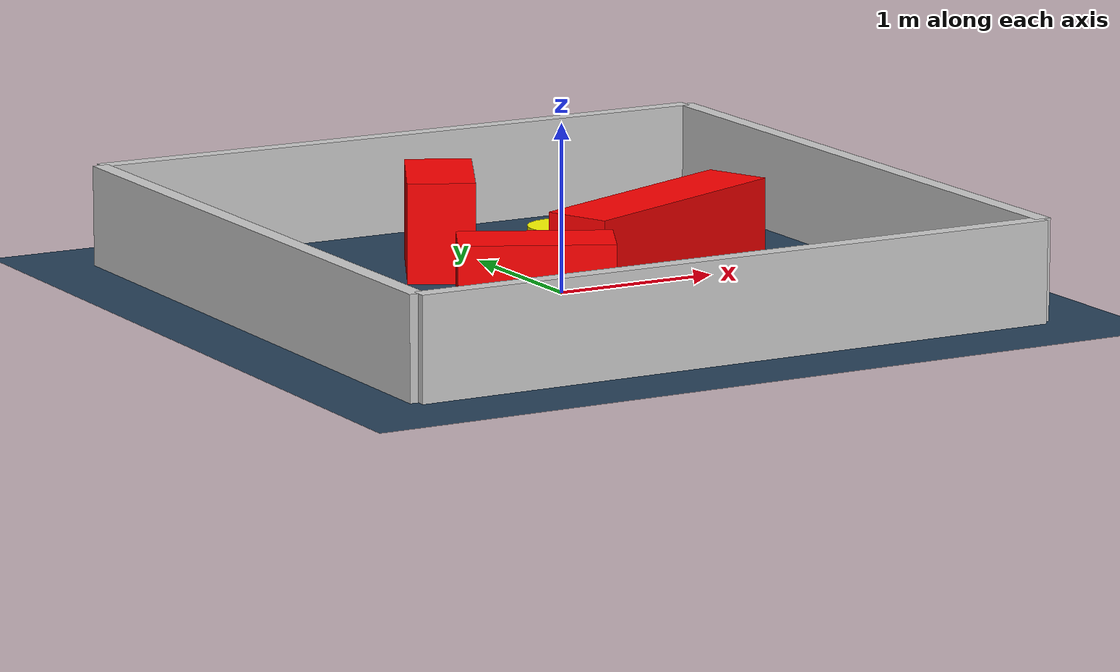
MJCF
<?xml version="1.0" ?>
<mujoco model="generated_environment">
  <option timestep="0.01" integrator="RK4" cone="elliptic"/>
  <default>
    <geom density="1"/>
  </default>
  <asset>
    <texture builtin="gradient" height="3072" rgb1="0.3 0.5 0.7" rgb2="0 0 0" type="skybox" width="512"/>
    <texture builtin="checker" height="300" mark="edge" markrgb="0.8 0.8 0.8" name="groundplane" rgb1="0.2 0.3 0.4" rgb2="0.1 0.2 0.3" type="2d" width="300"/>
    <material name="groundplane" reflectance="0.2" texrepeat="5 5" texture="groundplane" texuniform="true"/>
    <material name="robot" rgba="0.0 1.0 0.0 1"/>
  </asset>
  <worldbody>
    <light dir="0 0 -1" directional="true" pos="0 0 1.5"/>
    <geom condim="4" friction="1.0 0.005 0.001" material="groundplane" name="floor" size="0 0 0.05" type="plane"/>
    <body name="walls">
      <geom name="wall_1" condim="4" pos="-2.0 0.0 0.3" rgba="0.800000011920929 0.800000011920929 0.800000011920929 1.0" size="0.05 2.0 0.3" type="box"/>
      <geom name="wall_2" condim="4" pos="2.0 0.0 0.3" rgba="0.800000011920929 0.800000011920929 0.800000011920929 1.0" size="0.05 2.0 0.3" type="box"/>
      <geom name="wall_3" condim="4" pos="0.0 -2.0 0.3" rgba="0.800000011920929 0.800000011920929 0.800000011920929 1.0" size="2.0 0.05 0.3" type="box"/>
      <geom name="wall_4" condim="4" pos="0.0 2.0 0.3" rgba="0.800000011920929 0.800000011920929 0.800000011920929 1.0" size="2.0 0.05 0.3" type="box"/>
    </body>
    <body name="robot">
      <joint name="joint_x" type="slide" pos="0 0 0" axis="1 0 0"/>
      <joint name="joint_y" type="slide" pos="0 0 0" axis="0 1 0"/>
      <geom name="robot" type="sphere" pos="0.3 0.0 0.2" size="0.05" mass="5." friction="1.0 0.005 0.0001" condim="4" rgba="0.5 0.5 0.5 1.0"/>
      <site name="sensor_ball"/>
    </body>
    <body name="obstacle_movable_1">
      <geom name="obstacle_movable_1" condim="4" pos="0.0 0.0 0.2" euler="0 0 0.0" friction="1.0 0.005 0.001" rgba="1.0 1.0 0.0 1.0" size="0.2 0.2 0.0" type="cylinder" mass="0.1"/>
      <joint type="free"/>
    </body>
    <body name="obstacle_2_static">
      <geom name="obstacle_2_static" condim="4" pos="0.4386812305809169 -0.35764608976708656 0.3" euler="0 0 203.07559009408757" friction="1.0 0.005 0.001" rgba="1 0 0 1" size="0.7745590511967215 0.2 0.3" type="box"/>
    </body>
    <body name="obstacle_3_static">
      <geom name="obstacle_3_static" condim="4" pos="-0.7580986451525898 -1.060450790396147 0.3" euler="0 0 153.68975133346973" friction="1.0 0.005 0.001" rgba="1 0 0 1" size="0.4405235832214729 0.2 0.3" type="box"/>
    </body>
    <body name="obstacle_4_static">
      <geom name="obstacle_4_static" condim="4" pos="-0.3379775009799677 0.8653276570345823 0.3" euler="0 0 243.53217206572762" friction="1.0 0.005 0.001" rgba="1 0 0 1" size="0.3692283277041219 0.2 0.3" type="box"/>
    </body>
  </worldbody>
  <actuator>
    <motor name="actuator_x" joint="joint_x" gear="1" ctrlrange="-1 1"/>
    <motor name="actuator_y" joint="joint_y" gear="1" ctrlrange="-1 1"/>
  </actuator>
</mujoco>
